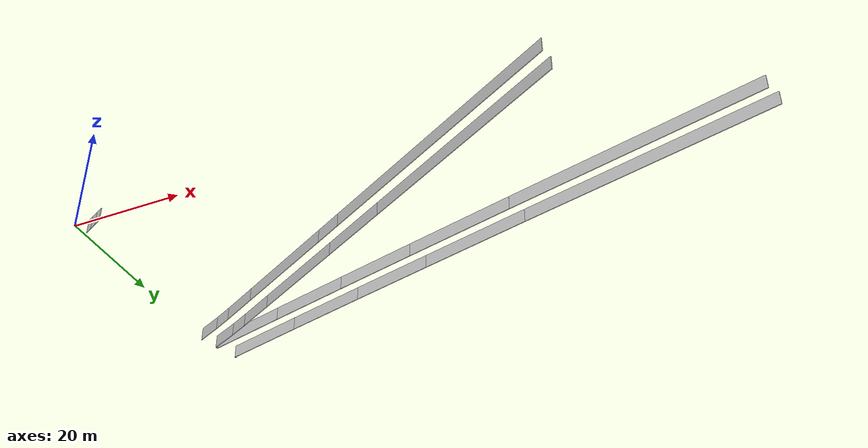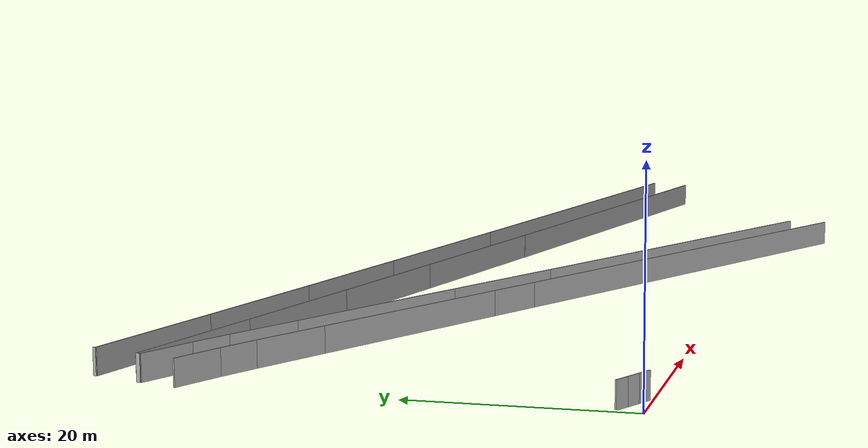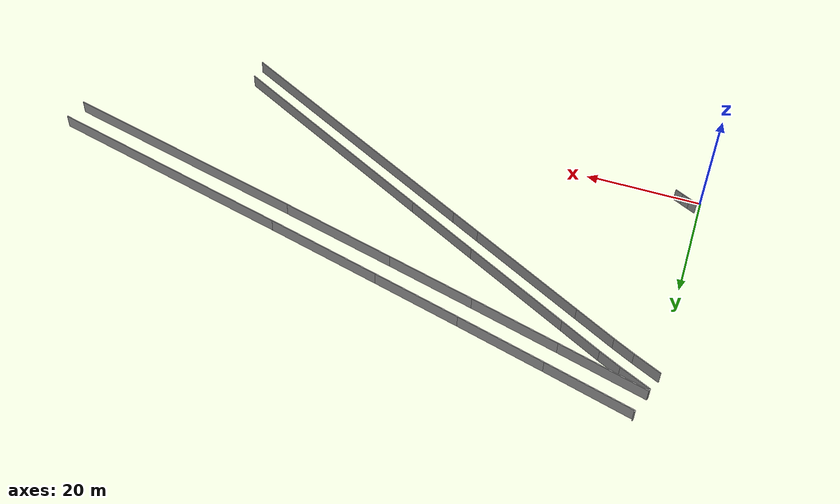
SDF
<?xml version="1.0" ?>
<sdf version="1.6">
  <model name="sps_0703">
    <pose frame="">0 0 0 0 -0 0</pose>
    <static>1</static>
    <self_collide>0</self_collide>
    <allow_auto_disable>0</allow_auto_disable>
    <link name="Wall110">
      <kinematic>0</kinematic>
      <gravity>1</gravity>
      <self_collide>0</self_collide>
      <collision name="collision">
        <geometry>
          <box>
            <size>5.77606 0.15 2.5</size>
          </box>
        </geometry>
        <pose frame="">0 0 0 0 -0 0</pose>
      </collision>
      <visual name="visual">
        <geometry>
          <box>
            <size>5.77606 0.15 2.5</size>
          </box>
        </geometry>
        <pose frame="">0 0 0 0 -0 0</pose>
        <cast_shadows>1</cast_shadows>
        <transparency>0.0</transparency>
      </visual>
      <pose frame="">3.36205 41.3309 1.25 0 -0 2.68958</pose>
    </link>
    <link name="Wall111">
      <kinematic>0</kinematic>
      <gravity>1</gravity>
      <self_collide>0</self_collide>
      <collision name="collision">
        <geometry>
          <box>
            <size>4.05741 0.15 2.5</size>
          </box>
        </geometry>
        <pose frame="">0 0 0 0 -0 0</pose>
      </collision>
      <visual name="visual">
        <geometry>
          <box>
            <size>4.05741 0.15 2.5</size>
          </box>
        </geometry>
        <pose frame="">0 0 0 0 -0 0</pose>
        <cast_shadows>1</cast_shadows>
        <transparency>0.0</transparency>
      </visual>
      <pose frame="">6.18914 36.0067 1.25 0 -0 2.66272</pose>
    </link>
    <link name="Wall192">
      <kinematic>0</kinematic>
      <gravity>1</gravity>
      <self_collide>0</self_collide>
      <collision name="collision">
        <geometry>
          <box>
            <size>51.1941 0.15 2.5</size>
          </box>
        </geometry>
        <pose frame="">0 0 0 0 -0 0</pose>
      </collision>
      <visual name="visual">
        <geometry>
          <box>
            <size>51.1941 0.15 2.5</size>
          </box>
        </geometry>
        <pose frame="">0 0 0 0 -0 0</pose>
        <cast_shadows>1</cast_shadows>
        <transparency>0.0</transparency>
      </visual>
      <pose frame="">61.9926 5.6456 1.25 0 -0 2.64268</pose>
    </link>
    <link name="Wall193">
      <kinematic>0</kinematic>
      <gravity>1</gravity>
      <self_collide>0</self_collide>
      <collision name="collision">
        <geometry>
          <box>
            <size>5.74684 0.15 2.5</size>
          </box>
        </geometry>
        <pose frame="">0 0 0 0 -0 0</pose>
      </collision>
      <visual name="visual">
        <geometry>
          <box>
            <size>5.74684 0.15 2.5</size>
          </box>
        </geometry>
        <pose frame="">0 0 0 0 -0 0</pose>
        <cast_shadows>1</cast_shadows>
        <transparency>0.0</transparency>
      </visual>
      <pose frame="">36.9926 19.2679 1.25 0 -0 2.64268</pose>
    </link>
    <link name="Wall194">
      <kinematic>0</kinematic>
      <gravity>1</gravity>
      <self_collide>0</self_collide>
      <collision name="collision">
        <geometry>
          <box>
            <size>22.2511 0.15 2.5</size>
          </box>
        </geometry>
        <pose frame="">0 0 0 0 -0 0</pose>
      </collision>
      <visual name="visual">
        <geometry>
          <box>
            <size>22.2511 0.15 2.5</size>
          </box>
        </geometry>
        <pose frame="">0 0 0 0 -0 0</pose>
        <cast_shadows>1</cast_shadows>
        <transparency>0.0</transparency>
      </visual>
      <pose frame="">24.7001 25.9661 1.25 0 -0 2.64268</pose>
    </link>
    <link name="Wall281">
      <kinematic>0</kinematic>
      <gravity>1</gravity>
      <self_collide>0</self_collide>
      <collision name="collision">
        <geometry>
          <box>
            <size>20.9938 0.15 2.5</size>
          </box>
        </geometry>
        <pose frame="">0 0 0 0 -0 0</pose>
      </collision>
      <visual name="visual">
        <geometry>
          <box>
            <size>20.9938 0.15 2.5</size>
          </box>
        </geometry>
        <pose frame="">0 0 0 0 -0 0</pose>
        <cast_shadows>1</cast_shadows>
        <transparency>0.0</transparency>
      </visual>
      <pose frame="">58.0767 32.2319 1.25 0 -0 2.88634</pose>
    </link>
    <link name="Wall347">
      <kinematic>0</kinematic>
      <gravity>1</gravity>
      <self_collide>0</self_collide>
      <collision name="collision">
        <geometry>
          <box>
            <size>0.299826 0.15 2.5</size>
          </box>
        </geometry>
        <pose frame="">0 0 0 0 -0 0</pose>
      </collision>
      <visual name="visual">
        <geometry>
          <box>
            <size>0.299826 0.15 2.5</size>
          </box>
        </geometry>
        <pose frame="">0 0 0 0 -0 0</pose>
        <cast_shadows>1</cast_shadows>
        <transparency>0.0</transparency>
      </visual>
      <pose frame="">2.19637 47.3405 1.25 0 -0 1.27499</pose>
    </link>
    <link name="Wall351">
      <kinematic>0</kinematic>
      <gravity>1</gravity>
      <self_collide>0</self_collide>
      <collision name="collision">
        <geometry>
          <box>
            <size>20.9947 0.15 2.5</size>
          </box>
        </geometry>
        <pose frame="">0 0 0 0 -0 0</pose>
      </collision>
      <visual name="visual">
        <geometry>
          <box>
            <size>20.9947 0.15 2.5</size>
          </box>
        </geometry>
        <pose frame="">0 0 0 0 -0 0</pose>
        <cast_shadows>1</cast_shadows>
        <transparency>0.0</transparency>
      </visual>
      <pose frame="">56.9662 27.9745 1.25 0 -0 2.88633</pose>
    </link>
    <link name="Wall427">
      <kinematic>0</kinematic>
      <gravity>1</gravity>
      <self_collide>0</self_collide>
      <collision name="collision">
        <geometry>
          <box>
            <size>0.407591 0.15 2.5</size>
          </box>
        </geometry>
        <pose frame="">0 0 0 0 -0 0</pose>
      </collision>
      <visual name="visual">
        <geometry>
          <box>
            <size>0.407591 0.15 2.5</size>
          </box>
        </geometry>
        <pose frame="">0 0 0 0 -0 0</pose>
        <cast_shadows>1</cast_shadows>
        <transparency>0.0</transparency>
      </visual>
      <pose frame="">0.822654 42.7875 1.25 0 -0 1.27917</pose>
    </link>
    <link name="Wall428">
      <kinematic>0</kinematic>
      <gravity>1</gravity>
      <self_collide>0</self_collide>
      <collision name="collision">
        <geometry>
          <box>
            <size>4.14005 0.15 2.5</size>
          </box>
        </geometry>
        <pose frame="">0 0 0 0 -0 0</pose>
      </collision>
      <visual name="visual">
        <geometry>
          <box>
            <size>4.14005 0.15 2.5</size>
          </box>
        </geometry>
        <pose frame="">0 0 0 0 -0 0</pose>
        <cast_shadows>1</cast_shadows>
        <transparency>0.0</transparency>
      </visual>
      <pose frame="">7.79714 39.1155 1.25 0 -0 2.66264</pose>
    </link>
    <link name="Wall522">
      <kinematic>0</kinematic>
      <gravity>1</gravity>
      <self_collide>0</self_collide>
      <collision name="collision">
        <geometry>
          <box>
            <size>5.16735 0.15 2.5</size>
          </box>
        </geometry>
        <pose frame="">0 0 0 0 -0 0</pose>
      </collision>
      <visual name="visual">
        <geometry>
          <box>
            <size>5.16735 0.15 2.5</size>
          </box>
        </geometry>
        <pose frame="">0 0 0 0 -0 0</pose>
        <cast_shadows>1</cast_shadows>
        <transparency>0.0</transparency>
      </visual>
      <pose frame="">2.06444 38.07 1.25 0 -0 2.68957</pose>
    </link>
    <link name="Wall523">
      <kinematic>0</kinematic>
      <gravity>1</gravity>
      <self_collide>0</self_collide>
      <collision name="collision">
        <geometry>
          <box>
            <size>7.90481 0.15 2.5</size>
          </box>
        </geometry>
        <pose frame="">0 0 0 0 -0 0</pose>
      </collision>
      <visual name="visual">
        <geometry>
          <box>
            <size>7.90481 0.15 2.5</size>
          </box>
        </geometry>
        <pose frame="">0 0 0 0 -0 0</pose>
        <cast_shadows>1</cast_shadows>
        <transparency>0.0</transparency>
      </visual>
      <pose frame="">11.4602 33.1806 1.25 0 -0 2.64263</pose>
    </link>
    <link name="Wall526">
      <kinematic>0</kinematic>
      <gravity>1</gravity>
      <self_collide>0</self_collide>
      <collision name="collision">
        <geometry>
          <box>
            <size>20.3439 0.15 2.5</size>
          </box>
        </geometry>
        <pose frame="">0 0 0 0 -0 0</pose>
      </collision>
      <visual name="visual">
        <geometry>
          <box>
            <size>20.3439 0.15 2.5</size>
          </box>
        </geometry>
        <pose frame="">0 0 0 0 -0 0</pose>
        <cast_shadows>1</cast_shadows>
        <transparency>0.0</transparency>
      </visual>
      <pose frame="">25.5374 29.4958 1.25 0 0 -0.498918</pose>
    </link>
    <link name="Wall527">
      <kinematic>0</kinematic>
      <gravity>1</gravity>
      <self_collide>0</self_collide>
      <collision name="collision">
        <geometry>
          <box>
            <size>14.0774 0.15 2.5</size>
          </box>
        </geometry>
        <pose frame="">0 0 0 0 -0 0</pose>
      </collision>
      <visual name="visual">
        <geometry>
          <box>
            <size>14.0774 0.15 2.5</size>
          </box>
        </geometry>
        <pose frame="">0 0 0 0 -0 0</pose>
        <cast_shadows>1</cast_shadows>
        <transparency>0.0</transparency>
      </visual>
      <pose frame="">40.6501 21.2609 1.25 0 0 -0.498918</pose>
    </link>
    <link name="Wall528">
      <kinematic>0</kinematic>
      <gravity>1</gravity>
      <self_collide>0</self_collide>
      <collision name="collision">
        <geometry>
          <box>
            <size>42.8636 0.15 2.5</size>
          </box>
        </geometry>
        <pose frame="">0 0 0 0 -0 0</pose>
      </collision>
      <visual name="visual">
        <geometry>
          <box>
            <size>42.8636 0.15 2.5</size>
          </box>
        </geometry>
        <pose frame="">0 0 0 0 -0 0</pose>
        <cast_shadows>1</cast_shadows>
        <transparency>0.0</transparency>
      </visual>
      <pose frame="">65.6501 7.63847 1.25 0 0 -0.498918</pose>
    </link>
    <link name="Wall608">
      <kinematic>0</kinematic>
      <gravity>1</gravity>
      <self_collide>0</self_collide>
      <collision name="collision">
        <geometry>
          <box>
            <size>7.93897 0.15 2.5</size>
          </box>
        </geometry>
        <pose frame="">0 0 0 0 -0 0</pose>
      </collision>
      <visual name="visual">
        <geometry>
          <box>
            <size>7.93897 0.15 2.5</size>
          </box>
        </geometry>
        <pose frame="">0 0 0 0 -0 0</pose>
        <cast_shadows>1</cast_shadows>
        <transparency>0.0</transparency>
      </visual>
      <pose frame="">13.1198 36.2622 1.25 0 0 -0.498924</pose>
    </link>
    <link name="Wall2734">
      <kinematic>0</kinematic>
      <gravity>1</gravity>
      <self_collide>0</self_collide>
      <collision name="collision">
        <geometry>
          <box>
            <size>15.854 0.15 2.5</size>
          </box>
        </geometry>
        <pose frame="">0 0 0 0 -0 0</pose>
      </collision>
      <visual name="visual">
        <geometry>
          <box>
            <size>15.854 0.15 2.5</size>
          </box>
        </geometry>
        <pose frame="">0 0 0 0 -0 0</pose>
        <cast_shadows>1</cast_shadows>
        <transparency>0.0</transparency>
      </visual>
      <pose frame="">39.145 32.65 1.25 0 -0 2.88329</pose>
    </link>
    <link name="Wall2735">
      <kinematic>0</kinematic>
      <gravity>1</gravity>
      <self_collide>0</self_collide>
      <collision name="collision">
        <geometry>
          <box>
            <size>15.8537 0.15 2.5</size>
          </box>
        </geometry>
        <pose frame="">0 0 0 0 -0 0</pose>
      </collision>
      <visual name="visual">
        <geometry>
          <box>
            <size>15.8537 0.15 2.5</size>
          </box>
        </geometry>
        <pose frame="">0 0 0 0 -0 0</pose>
        <cast_shadows>1</cast_shadows>
        <transparency>0.0</transparency>
      </visual>
      <pose frame="">23.8264 36.7345 1.25 0 -0 2.87875</pose>
    </link>
    <link name="Wall2736">
      <kinematic>0</kinematic>
      <gravity>1</gravity>
      <self_collide>0</self_collide>
      <collision name="collision">
        <geometry>
          <box>
            <size>15.8539 0.15 2.5</size>
          </box>
        </geometry>
        <pose frame="">0 0 0 0 -0 0</pose>
      </collision>
      <visual name="visual">
        <geometry>
          <box>
            <size>15.8539 0.15 2.5</size>
          </box>
        </geometry>
        <pose frame="">0 0 0 0 -0 0</pose>
        <cast_shadows>1</cast_shadows>
        <transparency>0.0</transparency>
      </visual>
      <pose frame="">8.52654 40.8884 1.25 0 -0 2.87422</pose>
    </link>
    <link name="Wall6630">
      <kinematic>0</kinematic>
      <gravity>1</gravity>
      <self_collide>0</self_collide>
      <collision name="collision">
        <geometry>
          <box>
            <size>45.9414 0.15 2.5</size>
          </box>
        </geometry>
        <pose frame="">0 0 0 0 -0 0</pose>
      </collision>
      <visual name="visual">
        <geometry>
          <box>
            <size>45.9414 0.15 2.5</size>
          </box>
        </geometry>
        <pose frame="">0 0 0 0 -0 0</pose>
        <cast_shadows>1</cast_shadows>
        <transparency>0.0</transparency>
      </visual>
      <pose frame="">89.3849 19.6601 1.25 0 -0 2.89246</pose>
    </link>
    <link name="Wall9379">
      <kinematic>0</kinematic>
      <gravity>1</gravity>
      <self_collide>0</self_collide>
      <collision name="collision">
        <geometry>
          <box>
            <size>15.7984 0.15 2.5</size>
          </box>
        </geometry>
        <pose frame="">0 0 0 0 -0 0</pose>
      </collision>
      <visual name="visual">
        <geometry>
          <box>
            <size>15.7984 0.15 2.5</size>
          </box>
        </geometry>
        <pose frame="">0 0 0 0 -0 0</pose>
        <cast_shadows>1</cast_shadows>
        <transparency>0.0</transparency>
      </visual>
      <pose frame="">40.2828 36.9002 1.25 0 -0 2.88327</pose>
    </link>
    <link name="Wall9380">
      <kinematic>0</kinematic>
      <gravity>1</gravity>
      <self_collide>0</self_collide>
      <collision name="collision">
        <geometry>
          <box>
            <size>15.7984 0.15 2.5</size>
          </box>
        </geometry>
        <pose frame="">0 0 0 0 -0 0</pose>
      </collision>
      <visual name="visual">
        <geometry>
          <box>
            <size>15.7984 0.15 2.5</size>
          </box>
        </geometry>
        <pose frame="">0 0 0 0 -0 0</pose>
        <cast_shadows>1</cast_shadows>
        <transparency>0.0</transparency>
      </visual>
      <pose frame="">25.0178 40.9706 1.25 0 -0 2.87874</pose>
    </link>
    <link name="Wall9381">
      <kinematic>0</kinematic>
      <gravity>1</gravity>
      <self_collide>0</self_collide>
      <collision name="collision">
        <geometry>
          <box>
            <size>15.7985 0.15 2.5</size>
          </box>
        </geometry>
        <pose frame="">0 0 0 0 -0 0</pose>
      </collision>
      <visual name="visual">
        <geometry>
          <box>
            <size>15.7985 0.15 2.5</size>
          </box>
        </geometry>
        <pose frame="">0 0 0 0 -0 0</pose>
        <cast_shadows>1</cast_shadows>
        <transparency>0.0</transparency>
      </visual>
      <pose frame="">9.77126 45.1101 1.25 0 -0 2.87422</pose>
    </link>
    <link name="Wall9384">
      <kinematic>0</kinematic>
      <gravity>1</gravity>
      <self_collide>0</self_collide>
      <collision name="collision">
        <geometry>
          <box>
            <size>45.882 0.15 2.5</size>
          </box>
        </geometry>
        <pose frame="">0 0 0 0 -0 0</pose>
      </collision>
      <visual name="visual">
        <geometry>
          <box>
            <size>45.882 0.15 2.5</size>
          </box>
        </geometry>
        <pose frame="">0 0 0 0 -0 0</pose>
        <cast_shadows>1</cast_shadows>
        <transparency>0.0</transparency>
      </visual>
      <pose frame="">90.4662 23.925 1.25 0 -0 2.89246</pose>
    </link>
    <link name="Wall9830">
      <kinematic>0</kinematic>
      <gravity>1</gravity>
      <self_collide>0</self_collide>
      <collision name="collision">
        <geometry>
          <box>
            <size>1.49243 0.15 2.5</size>
          </box>
        </geometry>
        <pose frame="">0 0 0 0 -0 0</pose>
      </collision>
      <visual name="visual">
        <geometry>
          <box>
            <size>1.49243 0.15 2.5</size>
          </box>
        </geometry>
        <pose frame="">0 0 0 0 -0 0</pose>
        <cast_shadows>1</cast_shadows>
        <transparency>0.0</transparency>
      </visual>
      <pose frame="">1.23318 2.02037 1.25 0 0 -0.474731</pose>
    </link>
    <link name="Wall9831">
      <kinematic>0</kinematic>
      <gravity>1</gravity>
      <self_collide>0</self_collide>
      <collision name="collision">
        <geometry>
          <box>
            <size>1.4923 0.15 2.5</size>
          </box>
        </geometry>
        <pose frame="">0 0 0 0 -0 0</pose>
      </collision>
      <visual name="visual">
        <geometry>
          <box>
            <size>1.4923 0.15 2.5</size>
          </box>
        </geometry>
        <pose frame="">0 0 0 0 -0 0</pose>
        <cast_shadows>1</cast_shadows>
        <transparency>0.0</transparency>
      </visual>
      <pose frame="">2.56106 1.33928 1.25 0 0 -0.473123</pose>
    </link>
    <link name="Wall9832">
      <kinematic>0</kinematic>
      <gravity>1</gravity>
      <self_collide>0</self_collide>
      <collision name="collision">
        <geometry>
          <box>
            <size>1.49239 0.15 2.5</size>
          </box>
        </geometry>
        <pose frame="">0 0 0 0 -0 0</pose>
      </collision>
      <visual name="visual">
        <geometry>
          <box>
            <size>1.49239 0.15 2.5</size>
          </box>
        </geometry>
        <pose frame="">0 0 0 0 -0 0</pose>
        <cast_shadows>1</cast_shadows>
        <transparency>0.0</transparency>
      </visual>
      <pose frame="">3.89004 0.660384 1.25 0 0 -0.471439</pose>
    </link>
  </model>
</sdf>
